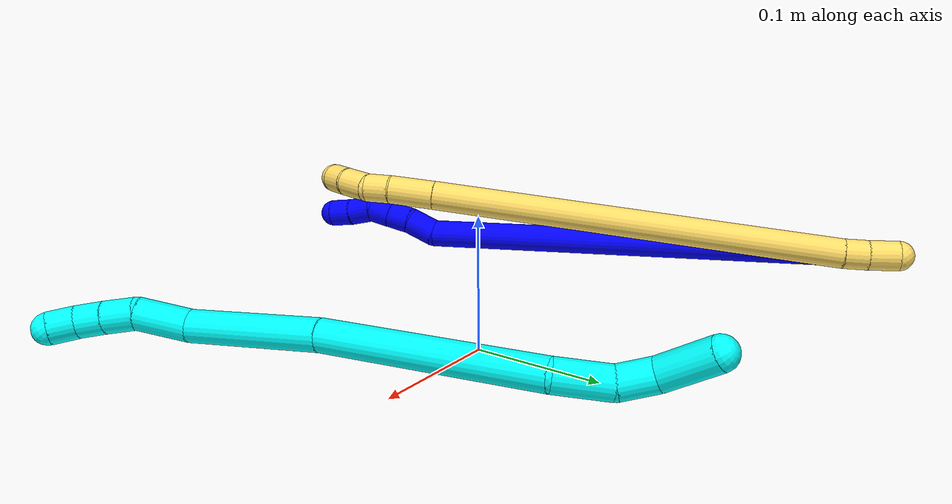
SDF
<sdf version="1.7">
 <world name="default">
  <model name="1">
   <static>0</static>
   <link name="1">
    <collision name="collision-cylinder-e_1_1_4">
     <pose>0.119679 -0.112759 -0.104871 2.31997 0.66068 1.33378</pose>
     <geometry><cylinder><radius>0.0125</radius><length>0.390055</length></cylinder></geometry>
     <surface>
      <friction><ode><mu>1.16</mu><mu2>1.16</mu2><slip1>0</slip1><slip2>0</slip2></ode></friction>
      <contact><ode><kp>1e+06</kp><kd>1</kd><max_vel>0</max_vel><min_depth>0.001</min_depth></ode></contact>
     </surface>
    </collision>
    <visual name="visual-cylinder-e_1_1_4">
     <pose>0.119679 -0.112759 -0.104871 2.31997 0.66068 1.33378</pose>
     <geometry><cylinder><radius>0.0125</radius><length>0.390055</length></cylinder></geometry>
     <material><ambient>0 0 1 1</ambient></material>
    </visual>
    <collision name="collision-cylinder-e_2_4_5">
     <pose>0.248116 -0.228179 -0.219361 2.87159 0.720274 2.44922</pose>
     <geometry><cylinder><radius>0.0125</radius><length>0.026555</length></cylinder></geometry>
     <surface>
      <friction><ode><mu>1.16</mu><mu2>1.16</mu2><slip1>0</slip1><slip2>0</slip2></ode></friction>
      <contact><ode><kp>1e+06</kp><kd>1</kd><max_vel>0</max_vel><min_depth>0.001</min_depth></ode></contact>
     </surface>
    </collision>
    <visual name="visual-cylinder-e_2_4_5">
     <pose>0.248116 -0.228179 -0.219361 2.87159 0.720274 2.44922</pose>
     <geometry><cylinder><radius>0.0125</radius><length>0.026555</length></cylinder></geometry>
     <material><ambient>0 0 1 1</ambient></material>
    </visual>
    <collision name="collision-cylinder-e_3_5_6">
     <pose>0.264842 -0.234406 -0.23517 2.61911 0.839873 2.06256</pose>
     <geometry><cylinder><radius>0.0125</radius><length>0.021402</length></cylinder></geometry>
     <surface>
      <friction><ode><mu>1.16</mu><mu2>1.16</mu2><slip1>0</slip1><slip2>0</slip2></ode></friction>
      <contact><ode><kp>1e+06</kp><kd>1</kd><max_vel>0</max_vel><min_depth>0.001</min_depth></ode></contact>
     </surface>
    </collision>
    <visual name="visual-cylinder-e_3_5_6">
     <pose>0.264842 -0.234406 -0.23517 2.61911 0.839873 2.06256</pose>
     <geometry><cylinder><radius>0.0125</radius><length>0.021402</length></cylinder></geometry>
     <material><ambient>0 0 1 1</ambient></material>
    </visual>
    <collision name="collision-cylinder-e_4_6_7">
     <pose>0.279469 -0.24155 -0.248042 2.6498 0.720851 1.96663</pose>
     <geometry><cylinder><radius>0.0125</radius><length>0.02018</length></cylinder></geometry>
     <surface>
      <friction><ode><mu>1.16</mu><mu2>1.16</mu2><slip1>0</slip1><slip2>0</slip2></ode></friction>
      <contact><ode><kp>1e+06</kp><kd>1</kd><max_vel>0</max_vel><min_depth>0.001</min_depth></ode></contact>
     </surface>
    </collision>
    <visual name="visual-cylinder-e_4_6_7">
     <pose>0.279469 -0.24155 -0.248042 2.6498 0.720851 1.96663</pose>
     <geometry><cylinder><radius>0.0125</radius><length>0.02018</length></cylinder></geometry>
     <material><ambient>0 0 1 1</ambient></material>
    </visual>
    <collision name="collision-cylinder-e_5_7_8">
     <pose>0.293476 -0.252435 -0.258007 1.99322 0.742315 1.08325</pose>
     <geometry><cylinder><radius>0.0125</radius><length>0.021738</length></cylinder></geometry>
     <surface>
      <friction><ode><mu>1.16</mu><mu2>1.16</mu2><slip1>0</slip1><slip2>0</slip2></ode></friction>
      <contact><ode><kp>1e+06</kp><kd>1</kd><max_vel>0</max_vel><min_depth>0.001</min_depth></ode></contact>
     </surface>
    </collision>
    <visual name="visual-cylinder-e_5_7_8">
     <pose>0.293476 -0.252435 -0.258007 1.99322 0.742315 1.08325</pose>
     <geometry><cylinder><radius>0.0125</radius><length>0.021738</length></cylinder></geometry>
     <material><ambient>0 0 1 1</ambient></material>
    </visual>
    <collision name="collision-cylinder-e_6_8_2">
     <pose>0.307803 -0.265795 -0.265205 2.14479 0.769229 1.27898</pose>
     <geometry><cylinder><radius>0.0125</radius><length>0.020071</length></cylinder></geometry>
     <surface>
      <friction><ode><mu>1.16</mu><mu2>1.16</mu2><slip1>0</slip1><slip2>0</slip2></ode></friction>
      <contact><ode><kp>1e+06</kp><kd>1</kd><max_vel>0</max_vel><min_depth>0.001</min_depth></ode></contact>
     </surface>
    </collision>
    <visual name="visual-cylinder-e_6_8_2">
     <pose>0.307803 -0.265795 -0.265205 2.14479 0.769229 1.27898</pose>
     <geometry><cylinder><radius>0.0125</radius><length>0.020071</length></cylinder></geometry>
     <material><ambient>0 0 1 1</ambient></material>
    </visual>
    <collision name="collision-sphere-2">
     <pose>0.314784 -0.271849 -0.26912 0 -0 0</pose>
     <geometry><sphere><radius>0.0125</radius></sphere></geometry>
     <surface>
      <friction><ode><mu>1.16</mu><mu2>1.16</mu2><slip1>0</slip1><slip2>0</slip2></ode></friction>
      <contact><ode><kp>1e+06</kp><kd>1</kd><max_vel>0</max_vel><min_depth>0.001</min_depth></ode></contact>
     </surface>
    </collision>
    <visual name="visual-sphere-2">
     <pose>0.314784 -0.271849 -0.26912 0 -0 0</pose>
     <geometry><sphere><radius>0.0125</radius></sphere></geometry>
     <material><ambient>0 0 1 1</ambient></material>
    </visual>
    <collision name="collision-sphere-4">
     <pose>0.239359 -0.225517 -0.209743 0 -0 0</pose>
     <geometry><sphere><radius>0.0125</radius></sphere></geometry>
     <surface>
      <friction><ode><mu>1.16</mu><mu2>1.16</mu2><slip1>0</slip1><slip2>0</slip2></ode></friction>
      <contact><ode><kp>1e+06</kp><kd>1</kd><max_vel>0</max_vel><min_depth>0.001</min_depth></ode></contact>
     </surface>
    </collision>
    <visual name="visual-sphere-4">
     <pose>0.239359 -0.225517 -0.209743 0 -0 0</pose>
     <geometry><sphere><radius>0.0125</radius></sphere></geometry>
     <material><ambient>0 0 1 1</ambient></material>
    </visual>
    <collision name="collision-sphere-1">
     <geometry><sphere><radius>0.0125</radius></sphere></geometry>
     <surface>
      <friction><ode><mu>1.16</mu><mu2>1.16</mu2><slip1>0</slip1><slip2>0</slip2></ode></friction>
      <contact><ode><kp>1e+06</kp><kd>1</kd><max_vel>0</max_vel><min_depth>0.001</min_depth></ode></contact>
     </surface>
    </collision>
    <visual name="visual-sphere-1">
     <geometry><sphere><radius>0.0125</radius></sphere></geometry>
     <material><ambient>0 0 1 1</ambient></material>
    </visual>
    <collision name="collision-sphere-8">
     <pose>0.300823 -0.25974 -0.261291 0 -0 0</pose>
     <geometry><sphere><radius>0.0125</radius></sphere></geometry>
     <surface>
      <friction><ode><mu>1.16</mu><mu2>1.16</mu2><slip1>0</slip1><slip2>0</slip2></ode></friction>
      <contact><ode><kp>1e+06</kp><kd>1</kd><max_vel>0</max_vel><min_depth>0.001</min_depth></ode></contact>
     </surface>
    </collision>
    <visual name="visual-sphere-8">
     <pose>0.300823 -0.25974 -0.261291 0 -0 0</pose>
     <geometry><sphere><radius>0.0125</radius></sphere></geometry>
     <material><ambient>0 0 1 1</ambient></material>
    </visual>
    <collision name="collision-sphere-5">
     <pose>0.256874 -0.230841 -0.228979 0 -0 0</pose>
     <geometry><sphere><radius>0.0125</radius></sphere></geometry>
     <surface>
      <friction><ode><mu>1.16</mu><mu2>1.16</mu2><slip1>0</slip1><slip2>0</slip2></ode></friction>
      <contact><ode><kp>1e+06</kp><kd>1</kd><max_vel>0</max_vel><min_depth>0.001</min_depth></ode></contact>
     </surface>
    </collision>
    <visual name="visual-sphere-5">
     <pose>0.256874 -0.230841 -0.228979 0 -0 0</pose>
     <geometry><sphere><radius>0.0125</radius></sphere></geometry>
     <material><ambient>0 0 1 1</ambient></material>
    </visual>
    <collision name="collision-sphere-6">
     <pose>0.272809 -0.237971 -0.24136 0 -0 0</pose>
     <geometry><sphere><radius>0.0125</radius></sphere></geometry>
     <surface>
      <friction><ode><mu>1.16</mu><mu2>1.16</mu2><slip1>0</slip1><slip2>0</slip2></ode></friction>
      <contact><ode><kp>1e+06</kp><kd>1</kd><max_vel>0</max_vel><min_depth>0.001</min_depth></ode></contact>
     </surface>
    </collision>
    <visual name="visual-sphere-6">
     <pose>0.272809 -0.237971 -0.24136 0 -0 0</pose>
     <geometry><sphere><radius>0.0125</radius></sphere></geometry>
     <material><ambient>0 0 1 1</ambient></material>
    </visual>
    <collision name="collision-sphere-7">
     <pose>0.286129 -0.24513 -0.254723 0 -0 0</pose>
     <geometry><sphere><radius>0.0125</radius></sphere></geometry>
     <surface>
      <friction><ode><mu>1.16</mu><mu2>1.16</mu2><slip1>0</slip1><slip2>0</slip2></ode></friction>
      <contact><ode><kp>1e+06</kp><kd>1</kd><max_vel>0</max_vel><min_depth>0.001</min_depth></ode></contact>
     </surface>
    </collision>
    <visual name="visual-sphere-7">
     <pose>0.286129 -0.24513 -0.254723 0 -0 0</pose>
     <geometry><sphere><radius>0.0125</radius></sphere></geometry>
     <material><ambient>0 0 1 1</ambient></material>
    </visual>
    <inertial>
     <pose>0.154271 -0.141509 -0.135401 0 -0 0</pose>
     <mass>0.5</mass>
     <inertia><ixx>0.004755</ixx><ixy>0</ixy><ixz>0</ixz><iyy>0.00517</iyy><iyz>0</iyz><izz>-0.0002</izz></inertia>
    </inertial>
   </link>
   <pose>-0.354817 0.162521 0.011658 2.39335 -0.002312 -2.02712</pose>
  </model>
  <model name="3">
   <static>0</static>
   <link name="3">
    <collision name="collision-cylinder-e_1_1_4">
     <pose>0.000156 -0.002372 0.022384 0.105588 0.006923 0.000366</pose>
     <geometry><cylinder><radius>0.0125</radius><length>0.045019</length></cylinder></geometry>
     <surface>
      <friction><ode><mu>1.16</mu><mu2>1.16</mu2><slip1>0</slip1><slip2>0</slip2></ode></friction>
      <contact><ode><kp>1e+06</kp><kd>1</kd><max_vel>0</max_vel><min_depth>0.001</min_depth></ode></contact>
     </surface>
    </collision>
    <visual name="visual-cylinder-e_1_1_4">
     <pose>0.000156 -0.002372 0.022384 0.105588 0.006923 0.000366</pose>
     <geometry><cylinder><radius>0.0125</radius><length>0.045019</length></cylinder></geometry>
     <material><ambient>0.003922 1 0.996078 1</ambient></material>
    </visual>
    <collision name="collision-cylinder-e_2_4_5">
     <pose>-0.004479 -0.010851 0.056455 0.481485 -0.348435 -0.086365</pose>
     <geometry><cylinder><radius>0.0125</radius><length>0.02806</length></cylinder></geometry>
     <surface>
      <friction><ode><mu>1.16</mu><mu2>1.16</mu2><slip1>0</slip1><slip2>0</slip2></ode></friction>
      <contact><ode><kp>1e+06</kp><kd>1</kd><max_vel>0</max_vel><min_depth>0.001</min_depth></ode></contact>
     </surface>
    </collision>
    <visual name="visual-cylinder-e_2_4_5">
     <pose>-0.004479 -0.010851 0.056455 0.481485 -0.348435 -0.086365</pose>
     <geometry><cylinder><radius>0.0125</radius><length>0.02806</length></cylinder></geometry>
     <material><ambient>0.003922 1 0.996078 1</ambient></material>
    </visual>
    <collision name="collision-cylinder-e_3_5_6">
     <pose>-0.014129 -0.031834 0.082155 0.815295 -0.233491 -0.101204</pose>
     <geometry><cylinder><radius>0.0125</radius><length>0.042013</length></cylinder></geometry>
     <surface>
      <friction><ode><mu>1.16</mu><mu2>1.16</mu2><slip1>0</slip1><slip2>0</slip2></ode></friction>
      <contact><ode><kp>1e+06</kp><kd>1</kd><max_vel>0</max_vel><min_depth>0.001</min_depth></ode></contact>
     </surface>
    </collision>
    <visual name="visual-cylinder-e_3_5_6">
     <pose>-0.014129 -0.031834 0.082155 0.815295 -0.233491 -0.101204</pose>
     <geometry><cylinder><radius>0.0125</radius><length>0.042013</length></cylinder></geometry>
     <material><ambient>0.003922 1 0.996078 1</ambient></material>
    </visual>
    <collision name="collision-cylinder-e_4_6_7">
     <pose>-0.013774 -0.097006 0.164075 0.637492 0.061645 0.020349</pose>
     <geometry><cylinder><radius>0.0125</radius><length>0.169332</length></cylinder></geometry>
     <surface>
      <friction><ode><mu>1.16</mu><mu2>1.16</mu2><slip1>0</slip1><slip2>0</slip2></ode></friction>
      <contact><ode><kp>1e+06</kp><kd>1</kd><max_vel>0</max_vel><min_depth>0.001</min_depth></ode></contact>
     </surface>
    </collision>
    <visual name="visual-cylinder-e_4_6_7">
     <pose>-0.013774 -0.097006 0.164075 0.637492 0.061645 0.020349</pose>
     <geometry><cylinder><radius>0.0125</radius><length>0.169332</length></cylinder></geometry>
     <material><ambient>0.003922 1 0.996078 1</ambient></material>
    </visual>
    <collision name="collision-cylinder-e_5_7_8">
     <pose>-0.007632 -0.176234 0.278068 0.560598 0.017012 0.004897</pose>
     <geometry><cylinder><radius>0.0125</radius><length>0.108844</length></cylinder></geometry>
     <surface>
      <friction><ode><mu>1.16</mu><mu2>1.16</mu2><slip1>0</slip1><slip2>0</slip2></ode></friction>
      <contact><ode><kp>1e+06</kp><kd>1</kd><max_vel>0</max_vel><min_depth>0.001</min_depth></ode></contact>
     </surface>
    </collision>
    <visual name="visual-cylinder-e_5_7_8">
     <pose>-0.007632 -0.176234 0.278068 0.560598 0.017012 0.004897</pose>
     <geometry><cylinder><radius>0.0125</radius><length>0.108844</length></cylinder></geometry>
     <material><ambient>0.003922 1 0.996078 1</ambient></material>
    </visual>
    <collision name="collision-cylinder-e_6_8_9">
     <pose>-0.010133 -0.22091 0.336859 0.891785 -0.167776 -0.080342</pose>
     <geometry><cylinder><radius>0.0125</radius><length>0.041041</length></cylinder></geometry>
     <surface>
      <friction><ode><mu>1.16</mu><mu2>1.16</mu2><slip1>0</slip1><slip2>0</slip2></ode></friction>
      <contact><ode><kp>1e+06</kp><kd>1</kd><max_vel>0</max_vel><min_depth>0.001</min_depth></ode></contact>
     </surface>
    </collision>
    <visual name="visual-cylinder-e_6_8_9">
     <pose>-0.010133 -0.22091 0.336859 0.891785 -0.167776 -0.080342</pose>
     <geometry><cylinder><radius>0.0125</radius><length>0.041041</length></cylinder></geometry>
     <material><ambient>0.003922 1 0.996078 1</ambient></material>
    </visual>
    <collision name="collision-cylinder-e_7_9_10">
     <pose>-0.017438 -0.242762 0.359146 0.567515 -0.328973 -0.096736</pose>
     <geometry><cylinder><radius>0.0125</radius><length>0.02401</length></cylinder></geometry>
     <surface>
      <friction><ode><mu>1.16</mu><mu2>1.16</mu2><slip1>0</slip1><slip2>0</slip2></ode></friction>
      <contact><ode><kp>1e+06</kp><kd>1</kd><max_vel>0</max_vel><min_depth>0.001</min_depth></ode></contact>
     </surface>
    </collision>
    <visual name="visual-cylinder-e_7_9_10">
     <pose>-0.017438 -0.242762 0.359146 0.567515 -0.328973 -0.096736</pose>
     <geometry><cylinder><radius>0.0125</radius><length>0.02401</length></cylinder></geometry>
     <material><ambient>0.003922 1 0.996078 1</ambient></material>
    </visual>
    <collision name="collision-cylinder-e_8_10_11">
     <pose>-0.024871 -0.253924 0.377271 0.534243 -0.343832 -0.09496</pose>
     <geometry><cylinder><radius>0.0125</radius><length>0.021091</length></cylinder></geometry>
     <surface>
      <friction><ode><mu>1.16</mu><mu2>1.16</mu2><slip1>0</slip1><slip2>0</slip2></ode></friction>
      <contact><ode><kp>1e+06</kp><kd>1</kd><max_vel>0</max_vel><min_depth>0.001</min_depth></ode></contact>
     </surface>
    </collision>
    <visual name="visual-cylinder-e_8_10_11">
     <pose>-0.024871 -0.253924 0.377271 0.534243 -0.343832 -0.09496</pose>
     <geometry><cylinder><radius>0.0125</radius><length>0.021091</length></cylinder></geometry>
     <material><ambient>0.003922 1 0.996078 1</ambient></material>
    </visual>
    <collision name="collision-cylinder-e_9_11_2">
     <pose>-0.034432 -0.263874 0.392596 0.625208 -0.62285 -0.20733</pose>
     <geometry><cylinder><radius>0.0125</radius><length>0.020591</length></cylinder></geometry>
     <surface>
      <friction><ode><mu>1.16</mu><mu2>1.16</mu2><slip1>0</slip1><slip2>0</slip2></ode></friction>
      <contact><ode><kp>1e+06</kp><kd>1</kd><max_vel>0</max_vel><min_depth>0.001</min_depth></ode></contact>
     </surface>
    </collision>
    <visual name="visual-cylinder-e_9_11_2">
     <pose>-0.034432 -0.263874 0.392596 0.625208 -0.62285 -0.20733</pose>
     <geometry><cylinder><radius>0.0125</radius><length>0.020591</length></cylinder></geometry>
     <material><ambient>0.003922 1 0.996078 1</ambient></material>
    </visual>
    <collision name="collision-sphere-2">
     <pose>-0.040438 -0.268768 0.399376 0 -0 0</pose>
     <geometry><sphere><radius>0.0125</radius></sphere></geometry>
     <surface>
      <friction><ode><mu>1.16</mu><mu2>1.16</mu2><slip1>0</slip1><slip2>0</slip2></ode></friction>
      <contact><ode><kp>1e+06</kp><kd>1</kd><max_vel>0</max_vel><min_depth>0.001</min_depth></ode></contact>
     </surface>
    </collision>
    <visual name="visual-sphere-2">
     <pose>-0.040438 -0.268768 0.399376 0 -0 0</pose>
     <geometry><sphere><radius>0.0125</radius></sphere></geometry>
     <material><ambient>0.003922 1 0.996078 1</ambient></material>
    </visual>
    <collision name="collision-sphere-11">
     <pose>-0.028426 -0.25898 0.385816 0 -0 0</pose>
     <geometry><sphere><radius>0.0125</radius></sphere></geometry>
     <surface>
      <friction><ode><mu>1.16</mu><mu2>1.16</mu2><slip1>0</slip1><slip2>0</slip2></ode></friction>
      <contact><ode><kp>1e+06</kp><kd>1</kd><max_vel>0</max_vel><min_depth>0.001</min_depth></ode></contact>
     </surface>
    </collision>
    <visual name="visual-sphere-11">
     <pose>-0.028426 -0.25898 0.385816 0 -0 0</pose>
     <geometry><sphere><radius>0.0125</radius></sphere></geometry>
     <material><ambient>0.003922 1 0.996078 1</ambient></material>
    </visual>
    <collision name="collision-sphere-10">
     <pose>-0.021316 -0.248869 0.368726 0 -0 0</pose>
     <geometry><sphere><radius>0.0125</radius></sphere></geometry>
     <surface>
      <friction><ode><mu>1.16</mu><mu2>1.16</mu2><slip1>0</slip1><slip2>0</slip2></ode></friction>
      <contact><ode><kp>1e+06</kp><kd>1</kd><max_vel>0</max_vel><min_depth>0.001</min_depth></ode></contact>
     </surface>
    </collision>
    <visual name="visual-sphere-10">
     <pose>-0.021316 -0.248869 0.368726 0 -0 0</pose>
     <geometry><sphere><radius>0.0125</radius></sphere></geometry>
     <material><ambient>0.003922 1 0.996078 1</ambient></material>
    </visual>
    <collision name="collision-sphere-9">
     <pose>-0.01356 -0.236655 0.349566 0 -0 0</pose>
     <geometry><sphere><radius>0.0125</radius></sphere></geometry>
     <surface>
      <friction><ode><mu>1.16</mu><mu2>1.16</mu2><slip1>0</slip1><slip2>0</slip2></ode></friction>
      <contact><ode><kp>1e+06</kp><kd>1</kd><max_vel>0</max_vel><min_depth>0.001</min_depth></ode></contact>
     </surface>
    </collision>
    <visual name="visual-sphere-9">
     <pose>-0.01356 -0.236655 0.349566 0 -0 0</pose>
     <geometry><sphere><radius>0.0125</radius></sphere></geometry>
     <material><ambient>0.003922 1 0.996078 1</ambient></material>
    </visual>
    <collision name="collision-sphere-4">
     <pose>0.000312 -0.004745 0.044767 0 -0 0</pose>
     <geometry><sphere><radius>0.0125</radius></sphere></geometry>
     <surface>
      <friction><ode><mu>1.16</mu><mu2>1.16</mu2><slip1>0</slip1><slip2>0</slip2></ode></friction>
      <contact><ode><kp>1e+06</kp><kd>1</kd><max_vel>0</max_vel><min_depth>0.001</min_depth></ode></contact>
     </surface>
    </collision>
    <visual name="visual-sphere-4">
     <pose>0.000312 -0.004745 0.044767 0 -0 0</pose>
     <geometry><sphere><radius>0.0125</radius></sphere></geometry>
     <material><ambient>0.003922 1 0.996078 1</ambient></material>
    </visual>
    <collision name="collision-sphere-1">
     <geometry><sphere><radius>0.0125</radius></sphere></geometry>
     <surface>
      <friction><ode><mu>1.16</mu><mu2>1.16</mu2><slip1>0</slip1><slip2>0</slip2></ode></friction>
      <contact><ode><kp>1e+06</kp><kd>1</kd><max_vel>0</max_vel><min_depth>0.001</min_depth></ode></contact>
     </surface>
    </collision>
    <visual name="visual-sphere-1">
     <geometry><sphere><radius>0.0125</radius></sphere></geometry>
     <material><ambient>0.003922 1 0.996078 1</ambient></material>
    </visual>
    <collision name="collision-sphere-8">
     <pose>-0.006706 -0.205165 0.324153 0 -0 0</pose>
     <geometry><sphere><radius>0.0125</radius></sphere></geometry>
     <surface>
      <friction><ode><mu>1.16</mu><mu2>1.16</mu2><slip1>0</slip1><slip2>0</slip2></ode></friction>
      <contact><ode><kp>1e+06</kp><kd>1</kd><max_vel>0</max_vel><min_depth>0.001</min_depth></ode></contact>
     </surface>
    </collision>
    <visual name="visual-sphere-8">
     <pose>-0.006706 -0.205165 0.324153 0 -0 0</pose>
     <geometry><sphere><radius>0.0125</radius></sphere></geometry>
     <material><ambient>0.003922 1 0.996078 1</ambient></material>
    </visual>
    <collision name="collision-sphere-5">
     <pose>-0.009269 -0.016958 0.068143 0 -0 0</pose>
     <geometry><sphere><radius>0.0125</radius></sphere></geometry>
     <surface>
      <friction><ode><mu>1.16</mu><mu2>1.16</mu2><slip1>0</slip1><slip2>0</slip2></ode></friction>
      <contact><ode><kp>1e+06</kp><kd>1</kd><max_vel>0</max_vel><min_depth>0.001</min_depth></ode></contact>
     </surface>
    </collision>
    <visual name="visual-sphere-5">
     <pose>-0.009269 -0.016958 0.068143 0 -0 0</pose>
     <geometry><sphere><radius>0.0125</radius></sphere></geometry>
     <material><ambient>0.003922 1 0.996078 1</ambient></material>
    </visual>
    <collision name="collision-sphere-6">
     <pose>-0.018989 -0.046711 0.096167 0 -0 0</pose>
     <geometry><sphere><radius>0.0125</radius></sphere></geometry>
     <surface>
      <friction><ode><mu>1.16</mu><mu2>1.16</mu2><slip1>0</slip1><slip2>0</slip2></ode></friction>
      <contact><ode><kp>1e+06</kp><kd>1</kd><max_vel>0</max_vel><min_depth>0.001</min_depth></ode></contact>
     </surface>
    </collision>
    <visual name="visual-sphere-6">
     <pose>-0.018989 -0.046711 0.096167 0 -0 0</pose>
     <geometry><sphere><radius>0.0125</radius></sphere></geometry>
     <material><ambient>0.003922 1 0.996078 1</ambient></material>
    </visual>
    <collision name="collision-sphere-7">
     <pose>-0.008558 -0.147302 0.231982 0 -0 0</pose>
     <geometry><sphere><radius>0.0125</radius></sphere></geometry>
     <surface>
      <friction><ode><mu>1.16</mu><mu2>1.16</mu2><slip1>0</slip1><slip2>0</slip2></ode></friction>
      <contact><ode><kp>1e+06</kp><kd>1</kd><max_vel>0</max_vel><min_depth>0.001</min_depth></ode></contact>
     </surface>
    </collision>
    <visual name="visual-sphere-7">
     <pose>-0.008558 -0.147302 0.231982 0 -0 0</pose>
     <geometry><sphere><radius>0.0125</radius></sphere></geometry>
     <material><ambient>0.003922 1 0.996078 1</ambient></material>
    </visual>
    <inertial>
     <pose>-0.011887 -0.126082 0.205163 0 -0 0</pose>
     <mass>0.5</mass>
     <inertia>
      <ixx>0.000557</ixx>
      <ixy>0</ixy>
      <ixz>0</ixz>
      <iyy>0.000438</iyy>
      <iyz>0</iyz>
      <izz>0.00033</izz>
     </inertia>
    </inertial>
   </link>
   <pose>-0.006785 0.181437 0.039492 -2.20339 -0.22101 -2.83414</pose>
  </model>
  <model name="5">
   <static>0</static>
   <link name="5">
    <collision name="collision-cylinder-e_1_1_4">
     <pose>0.003158 -0.008919 -0.007969 2.30001 0.258149 0.564577</pose>
     <geometry><cylinder><radius>0.0125</radius><length>0.024741</length></cylinder></geometry>
     <surface>
      <friction><ode><mu>1.16</mu><mu2>1.16</mu2><slip1>0</slip1><slip2>0</slip2></ode></friction>
      <contact><ode><kp>1e+06</kp><kd>1</kd><max_vel>0</max_vel><min_depth>0.001</min_depth></ode></contact>
     </surface>
    </collision>
    <visual name="visual-cylinder-e_1_1_4">
     <pose>0.003158 -0.008919 -0.007969 2.30001 0.258149 0.564577</pose>
     <geometry><cylinder><radius>0.0125</radius><length>0.024741</length></cylinder></geometry>
     <material><ambient>1 0.858824 0.4 1</ambient></material>
    </visual>
    <collision name="collision-cylinder-e_2_4_5">
     <pose>0.008193 -0.025051 -0.022658 2.32083 0.188109 0.427018</pose>
     <geometry><cylinder><radius>0.0125</radius><length>0.02007</length></cylinder></geometry>
     <surface>
      <friction><ode><mu>1.16</mu><mu2>1.16</mu2><slip1>0</slip1><slip2>0</slip2></ode></friction>
      <contact><ode><kp>1e+06</kp><kd>1</kd><max_vel>0</max_vel><min_depth>0.001</min_depth></ode></contact>
     </surface>
    </collision>
    <visual name="visual-cylinder-e_2_4_5">
     <pose>0.008193 -0.025051 -0.022658 2.32083 0.188109 0.427018</pose>
     <geometry><cylinder><radius>0.0125</radius><length>0.02007</length></cylinder></geometry>
     <material><ambient>1 0.858824 0.4 1</ambient></material>
    </visual>
    <collision name="collision-cylinder-e_3_5_6">
     <pose>0.04101 -0.148164 -0.156273 2.40145 0.178125 0.452484</pose>
     <geometry><cylinder><radius>0.0125</radius><length>0.349243</length></cylinder></geometry>
     <surface>
      <friction><ode><mu>1.16</mu><mu2>1.16</mu2><slip1>0</slip1><slip2>0</slip2></ode></friction>
      <contact><ode><kp>1e+06</kp><kd>1</kd><max_vel>0</max_vel><min_depth>0.001</min_depth></ode></contact>
     </surface>
    </collision>
    <visual name="visual-cylinder-e_3_5_6">
     <pose>0.04101 -0.148164 -0.156273 2.40145 0.178125 0.452484</pose>
     <geometry><cylinder><radius>0.0125</radius><length>0.349243</length></cylinder></geometry>
     <material><ambient>1 0.858824 0.4 1</ambient></material>
    </visual>
    <collision name="collision-cylinder-e_4_6_7">
     <pose>0.076009 -0.276976 -0.297441 2.40621 0.207866 0.528888</pose>
     <geometry><cylinder><radius>0.0125</radius><length>0.039337</length></cylinder></geometry>
     <surface>
      <friction><ode><mu>1.16</mu><mu2>1.16</mu2><slip1>0</slip1><slip2>0</slip2></ode></friction>
      <contact><ode><kp>1e+06</kp><kd>1</kd><max_vel>0</max_vel><min_depth>0.001</min_depth></ode></contact>
     </surface>
    </collision>
    <visual name="visual-cylinder-e_4_6_7">
     <pose>0.076009 -0.276976 -0.297441 2.40621 0.207866 0.528888</pose>
     <geometry><cylinder><radius>0.0125</radius><length>0.039337</length></cylinder></geometry>
     <material><ambient>1 0.858824 0.4 1</ambient></material>
    </visual>
    <collision name="collision-cylinder-e_5_7_8">
     <pose>0.083585 -0.296798 -0.319357 2.40652 0.328856 0.813789</pose>
     <geometry><cylinder><radius>0.0125</radius><length>0.021777</length></cylinder></geometry>
     <surface>
      <friction><ode><mu>1.16</mu><mu2>1.16</mu2><slip1>0</slip1><slip2>0</slip2></ode></friction>
      <contact><ode><kp>1e+06</kp><kd>1</kd><max_vel>0</max_vel><min_depth>0.001</min_depth></ode></contact>
     </surface>
    </collision>
    <visual name="visual-cylinder-e_5_7_8">
     <pose>0.083585 -0.296798 -0.319357 2.40652 0.328856 0.813789</pose>
     <geometry><cylinder><radius>0.0125</radius><length>0.021777</length></cylinder></geometry>
     <material><ambient>1 0.858824 0.4 1</ambient></material>
    </visual>
    <collision name="collision-cylinder-e_6_8_9">
     <pose>0.093649 -0.307808 -0.336711 2.74214 0.555917 1.90759</pose>
     <geometry><cylinder><radius>0.0125</radius><length>0.024816</length></cylinder></geometry>
     <surface>
      <friction><ode><mu>1.16</mu><mu2>1.16</mu2><slip1>0</slip1><slip2>0</slip2></ode></friction>
      <contact><ode><kp>1e+06</kp><kd>1</kd><max_vel>0</max_vel><min_depth>0.001</min_depth></ode></contact>
     </surface>
    </collision>
    <visual name="visual-cylinder-e_6_8_9">
     <pose>0.093649 -0.307808 -0.336711 2.74214 0.555917 1.90759</pose>
     <geometry><cylinder><radius>0.0125</radius><length>0.024816</length></cylinder></geometry>
     <material><ambient>1 0.858824 0.4 1</ambient></material>
    </visual>
    <collision name="collision-cylinder-e_7_9_2">
     <pose>0.106817 -0.313933 -0.353647 2.86821 0.722856 2.44367</pose>
     <geometry><cylinder><radius>0.0125</radius><length>0.020015</length></cylinder></geometry>
     <surface>
      <friction><ode><mu>1.16</mu><mu2>1.16</mu2><slip1>0</slip1><slip2>0</slip2></ode></friction>
      <contact><ode><kp>1e+06</kp><kd>1</kd><max_vel>0</max_vel><min_depth>0.001</min_depth></ode></contact>
     </surface>
    </collision>
    <visual name="visual-cylinder-e_7_9_2">
     <pose>0.106817 -0.313933 -0.353647 2.86821 0.722856 2.44367</pose>
     <geometry><cylinder><radius>0.0125</radius><length>0.020015</length></cylinder></geometry>
     <material><ambient>1 0.858824 0.4 1</ambient></material>
    </visual>
    <collision name="collision-sphere-2">
     <pose>0.113438 -0.315959 -0.360873 0 -0 0</pose>
     <geometry><sphere><radius>0.0125</radius></sphere></geometry>
     <surface>
      <friction><ode><mu>1.16</mu><mu2>1.16</mu2><slip1>0</slip1><slip2>0</slip2></ode></friction>
      <contact><ode><kp>1e+06</kp><kd>1</kd><max_vel>0</max_vel><min_depth>0.001</min_depth></ode></contact>
     </surface>
    </collision>
    <visual name="visual-sphere-2">
     <pose>0.113438 -0.315959 -0.360873 0 -0 0</pose>
     <geometry><sphere><radius>0.0125</radius></sphere></geometry>
     <material><ambient>1 0.858824 0.4 1</ambient></material>
    </visual>
    <collision name="collision-sphere-9">
     <pose>0.100197 -0.311907 -0.346421 0 -0 0</pose>
     <geometry><sphere><radius>0.0125</radius></sphere></geometry>
     <surface>
      <friction><ode><mu>1.16</mu><mu2>1.16</mu2><slip1>0</slip1><slip2>0</slip2></ode></friction>
      <contact><ode><kp>1e+06</kp><kd>1</kd><max_vel>0</max_vel><min_depth>0.001</min_depth></ode></contact>
     </surface>
    </collision>
    <visual name="visual-sphere-9">
     <pose>0.100197 -0.311907 -0.346421 0 -0 0</pose>
     <geometry><sphere><radius>0.0125</radius></sphere></geometry>
     <material><ambient>1 0.858824 0.4 1</ambient></material>
    </visual>
    <collision name="collision-sphere-4">
     <pose>0.006316 -0.017838 -0.015938 0 -0 0</pose>
     <geometry><sphere><radius>0.0125</radius></sphere></geometry>
     <surface>
      <friction><ode><mu>1.16</mu><mu2>1.16</mu2><slip1>0</slip1><slip2>0</slip2></ode></friction>
      <contact><ode><kp>1e+06</kp><kd>1</kd><max_vel>0</max_vel><min_depth>0.001</min_depth></ode></contact>
     </surface>
    </collision>
    <visual name="visual-sphere-4">
     <pose>0.006316 -0.017838 -0.015938 0 -0 0</pose>
     <geometry><sphere><radius>0.0125</radius></sphere></geometry>
     <material><ambient>1 0.858824 0.4 1</ambient></material>
    </visual>
    <collision name="collision-sphere-1">
     <geometry><sphere><radius>0.0125</radius></sphere></geometry>
     <surface>
      <friction><ode><mu>1.16</mu><mu2>1.16</mu2><slip1>0</slip1><slip2>0</slip2></ode></friction>
      <contact><ode><kp>1e+06</kp><kd>1</kd><max_vel>0</max_vel><min_depth>0.001</min_depth></ode></contact>
     </surface>
    </collision>
    <visual name="visual-sphere-1">
     <geometry><sphere><radius>0.0125</radius></sphere></geometry>
     <material><ambient>1 0.858824 0.4 1</ambient></material>
    </visual>
    <collision name="collision-sphere-8">
     <pose>0.087101 -0.303709 -0.327001 0 -0 0</pose>
     <geometry><sphere><radius>0.0125</radius></sphere></geometry>
     <surface>
      <friction><ode><mu>1.16</mu><mu2>1.16</mu2><slip1>0</slip1><slip2>0</slip2></ode></friction>
      <contact><ode><kp>1e+06</kp><kd>1</kd><max_vel>0</max_vel><min_depth>0.001</min_depth></ode></contact>
     </surface>
    </collision>
    <visual name="visual-sphere-8">
     <pose>0.087101 -0.303709 -0.327001 0 -0 0</pose>
     <geometry><sphere><radius>0.0125</radius></sphere></geometry>
     <material><ambient>1 0.858824 0.4 1</ambient></material>
    </visual>
    <collision name="collision-sphere-5">
     <pose>0.010069 -0.032264 -0.029378 0 -0 0</pose>
     <geometry><sphere><radius>0.0125</radius></sphere></geometry>
     <surface>
      <friction><ode><mu>1.16</mu><mu2>1.16</mu2><slip1>0</slip1><slip2>0</slip2></ode></friction>
      <contact><ode><kp>1e+06</kp><kd>1</kd><max_vel>0</max_vel><min_depth>0.001</min_depth></ode></contact>
     </surface>
    </collision>
    <visual name="visual-sphere-5">
     <pose>0.010069 -0.032264 -0.029378 0 -0 0</pose>
     <geometry><sphere><radius>0.0125</radius></sphere></geometry>
     <material><ambient>1 0.858824 0.4 1</ambient></material>
    </visual>
    <collision name="collision-sphere-6">
     <pose>0.07195 -0.264065 -0.283169 0 -0 0</pose>
     <geometry><sphere><radius>0.0125</radius></sphere></geometry>
     <surface>
      <friction><ode><mu>1.16</mu><mu2>1.16</mu2><slip1>0</slip1><slip2>0</slip2></ode></friction>
      <contact><ode><kp>1e+06</kp><kd>1</kd><max_vel>0</max_vel><min_depth>0.001</min_depth></ode></contact>
     </surface>
    </collision>
    <visual name="visual-sphere-6">
     <pose>0.07195 -0.264065 -0.283169 0 -0 0</pose>
     <geometry><sphere><radius>0.0125</radius></sphere></geometry>
     <material><ambient>1 0.858824 0.4 1</ambient></material>
    </visual>
    <collision name="collision-sphere-7">
     <pose>0.080068 -0.289887 -0.311713 0 -0 0</pose>
     <geometry><sphere><radius>0.0125</radius></sphere></geometry>
     <surface>
      <friction><ode><mu>1.16</mu><mu2>1.16</mu2><slip1>0</slip1><slip2>0</slip2></ode></friction>
      <contact><ode><kp>1e+06</kp><kd>1</kd><max_vel>0</max_vel><min_depth>0.001</min_depth></ode></contact>
     </surface>
    </collision>
    <visual name="visual-sphere-7">
     <pose>0.080068 -0.289887 -0.311713 0 -0 0</pose>
     <geometry><sphere><radius>0.0125</radius></sphere></geometry>
     <material><ambient>1 0.858824 0.4 1</ambient></material>
    </visual>
    <inertial>
     <pose>0.047674 -0.167499 -0.178637 0 -0 0</pose>
     <mass>0.5</mass>
     <inertia>
      <ixx>0.004713</ixx>
      <ixy>0</ixy>
      <ixz>0</ixz>
      <iyy>-0.000667</iyy>
      <iyz>0</iyz>
      <izz>0.00171</izz>
     </inertia>
    </inertial>
   </link>
   <pose>-0.292367 0.216724 0.035043 2.58229 0.646098 -2.37853</pose>
  </model>
 </world>
</sdf>
